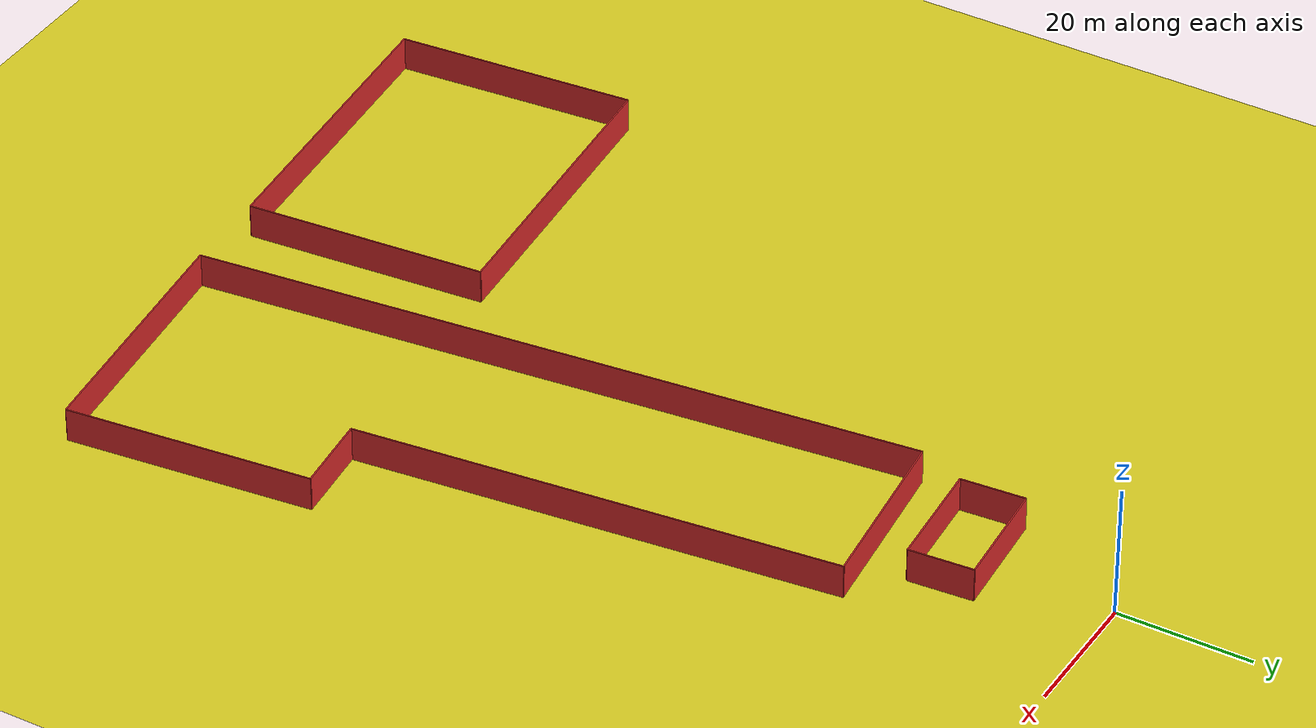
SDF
<sdf version="1.4">
 <world name="default">
  <model name="ground">
   <link name="body">
    <collision name="geom">
     <geometry><plane><normal>0 0 1</normal><size>99.114900331 714.079784269</size></plane></geometry>
     <surface><friction><ode><mu>100</mu><mu2>50</mu2></ode></friction></surface>
    </collision>
    <visual name="visual">
     <cast_shadows>false</cast_shadows>
     <geometry><plane><normal>0 0 1</normal><size>99.114900331 714.079784269</size></plane></geometry>
     <material>
      <script><uri>file://media/materials/scripts/gazebo.material</uri><name>Gazebo/Yellow</name></script>
     </material>
    </visual>
   </link>
   <static>true</static>
  </model>
  <spherical_coordinates>
   <surface_model>EARTH_WGS84</surface_model>
   <latitude_deg>11.0531799326</latitude_deg>
   <longitude_deg>106.673321124</longitude_deg>
   <elevation>0</elevation>
   <heading_deg>0</heading_deg>
  </spherical_coordinates>
  <model name="office_building_602270477">
   <static>true</static>
   <pose>0.635913883664 -21.5998028383 0.0 0 0 0</pose>
   <link name="office_building_602270477_0">
    <collision name="office_building_602270477_0">
     <geometry><box><size>9.60905539337 0.2 10</size></box></geometry>
    </collision>
    <visual name="office_building_602270477_0">
     <geometry><box><size>9.60905539337 0.2 10</size></box></geometry>
     <material>
      <script><uri>file://media/materials/scripts/gazebo.material</uri><name>Gazebo/Red</name></script>
     </material>
    </visual>
    <pose>6.81291829833 -0.442998552524 0 0 0 1.64609633675</pose>
   </link>
   <link name="office_building_602270477_1">
    <collision name="office_building_602270477_1">
     <geometry><box><size>16.8951800769 0.2 10</size></box></geometry>
    </collision>
    <visual name="office_building_602270477_1">
     <geometry><box><size>16.8951800769 0.2 10</size></box></geometry>
     <material>
      <script><uri>file://media/materials/scripts/gazebo.material</uri><name>Gazebo/Red</name></script>
     </material>
    </visual>
    <pose>-1.24865061714 -5.8778929042 0 0 0 0.0763065736783</pose>
   </link>
   <link name="office_building_602270477_2">
    <collision name="office_building_602270477_2">
     <geometry><box><size>9.60990310269 0.2 10</size></box></geometry>
    </collision>
    <visual name="office_building_602270477_2">
     <geometry><box><size>9.60990310269 0.2 10</size></box></geometry>
     <material>
      <script><uri>file://media/materials/scripts/gazebo.material</uri><name>Gazebo/Red</name></script>
     </material>
    </visual>
    <pose>-10.0386578516 -1.73095870906 0 0 0 -1.49434250681</pose>
   </link>
   <link name="office_building_602270477_3">
    <collision name="office_building_602270477_3">
     <geometry><box><size>16.9062672462 0.2 10</size></box></geometry>
    </collision>
    <visual name="office_building_602270477_3">
     <geometry><box><size>16.9062672462 0.2 10</size></box></geometry>
     <material>
      <script><uri>file://media/materials/scripts/gazebo.material</uri><name>Gazebo/Red</name></script>
     </material>
    </visual>
    <pose>-1.97708893616 3.70393564261 0 0 0 -3.0653365034</pose>
   </link>
  </model>
  <model name="office_building_602270479">
   <static>true</static>
   <pose>12.7083766877 -84.5787619906 0.0 0 0 0</pose>
   <link name="office_building_602270479_0">
    <collision name="office_building_602270479_0">
     <geometry><box><size>27.0700180258 0.2 10</size></box></geometry>
    </collision>
    <visual name="office_building_602270479_0">
     <geometry><box><size>27.0700180258 0.2 10</size></box></geometry>
     <material>
      <script><uri>file://media/materials/scripts/gazebo.material</uri><name>Gazebo/Red</name></script>
     </material>
    </visual>
    <pose>-10.9803852163 50.7932331026 0 0 0 -3.03251431329</pose>
   </link>
   <link name="office_building_602270479_1">
    <collision name="office_building_602270479_1">
     <geometry><box><size>71.9525233368 0.2 10</size></box></geometry>
    </collision>
    <visual name="office_building_602270479_1">
     <geometry><box><size>71.9525233368 0.2 10</size></box></geometry>
     <material>
      <script><uri>file://media/materials/scripts/gazebo.material</uri><name>Gazebo/Red</name></script>
     </material>
    </visual>
    <pose>6.38871078928 16.5040231021 0 0 0 1.67982080604</pose>
   </link>
   <link name="office_building_602270479_2">
    <collision name="office_building_602270479_2">
     <geometry><box><size>12.0913005466 0.2 10</size></box></geometry>
    </collision>
    <visual name="office_building_602270479_2">
     <geometry><box><size>12.0913005466 0.2 10</size></box></geometry>
     <material>
      <script><uri>file://media/materials/scripts/gazebo.material</uri><name>Gazebo/Red</name></script>
     </material>
    </visual>
    <pose>16.313314867 -18.6037578423 0 0 0 -3.03305727362</pose>
   </link>
   <link name="office_building_602270479_3">
    <collision name="office_building_602270479_3">
     <geometry><box><size>36.9863981373 0.2 10</size></box></geometry>
    </collision>
    <visual name="office_building_602270479_3">
     <geometry><box><size>36.9863981373 0.2 10</size></box></geometry>
     <material>
      <script><uri>file://media/materials/scripts/gazebo.material</uri><name>Gazebo/Red</name></script>
     </material>
    </visual>
    <pose>24.3362889678 -36.3322038683 0 0 0 1.6798576876</pose>
   </link>
   <link name="office_building_602270479_4">
    <collision name="office_building_602270479_4">
     <geometry><box><size>39.1625047953 0.2 10</size></box></geometry>
    </collision>
    <visual name="office_building_602270479_4">
     <geometry><box><size>39.1625047953 0.2 10</size></box></geometry>
     <material>
      <script><uri>file://media/materials/scripts/gazebo.material</uri><name>Gazebo/Red</name></script>
     </material>
    </visual>
    <pose>6.88454719662 -56.849366619 0 0 0 0.109190324866</pose>
   </link>
   <link name="office_building_602270479_5">
    <collision name="office_building_602270479_5">
     <geometry><box><size>108.949872205 0.2 10</size></box></geometry>
    </collision>
    <visual name="office_building_602270479_5">
     <geometry><box><size>108.949872205 0.2 10</size></box></geometry>
     <material>
      <script><uri>file://media/materials/scripts/gazebo.material</uri><name>Gazebo/Red</name></script>
     </material>
    </visual>
    <pose>-18.5075229097 -4.83171059244 0 0 0 -1.46177022344</pose>
   </link>
  </model>
  <model name="office_building_602270478">
   <static>true</static>
   <pose>-33.908772517 -123.951353626 0.0 0 0 0</pose>
   <link name="office_building_602270478_0">
    <collision name="office_building_602270478_0">
     <geometry><box><size>36.427009519 0.2 10</size></box></geometry>
    </collision>
    <visual name="office_building_602270478_0">
     <geometry><box><size>36.427009519 0.2 10</size></box></geometry>
     <material>
      <script><uri>file://media/materials/scripts/gazebo.material</uri><name>Gazebo/Red</name></script>
     </material>
    </visual>
    <pose>19.0366015827 -2.04049518141 0 0 0 1.65516124587</pose>
   </link>
   <link name="office_building_602270478_1">
    <collision name="office_building_602270478_1">
     <geometry><box><size>46.9923862558 0.2 10</size></box></geometry>
    </collision>
    <visual name="office_building_602270478_1">
     <geometry><box><size>46.9923862558 0.2 10</size></box></geometry>
     <material>
      <script><uri>file://media/materials/scripts/gazebo.material</uri><name>Gazebo/Red</name></script>
     </material>
    </visual>
    <pose>-2.84070085426 -22.1757971815 0 0 0 0.0846498852545</pose>
   </link>
   <link name="office_building_602270478_2">
    <collision name="office_building_602270478_2">
     <geometry><box><size>36.4270614406 0.2 10</size></box></geometry>
    </collision>
    <visual name="office_building_602270478_2">
     <geometry><box><size>36.4270614406 0.2 10</size></box></geometry>
     <material>
      <script><uri>file://media/materials/scripts/gazebo.material</uri><name>Gazebo/Red</name></script>
     </material>
    </visual>
    <pose>-27.7875229989 -6.01362044526 0 0 0 -1.48643140662</pose>
   </link>
   <link name="office_building_602270478_3">
    <collision name="office_building_602270478_3">
     <geometry><box><size>46.992386281 0.2 10</size></box></geometry>
    </collision>
    <visual name="office_building_602270478_3">
     <geometry><box><size>46.992386281 0.2 10</size></box></geometry>
     <material>
      <script><uri>file://media/materials/scripts/gazebo.material</uri><name>Gazebo/Red</name></script>
     </material>
    </visual>
    <pose>-5.91022056201 14.1216815548 0 0 0 -3.05694387323</pose>
   </link>
  </model>
 </world>
</sdf>
